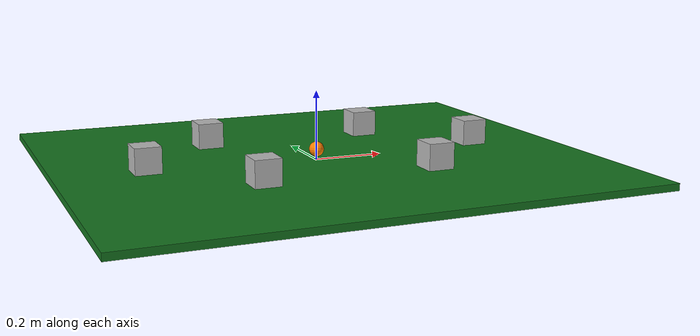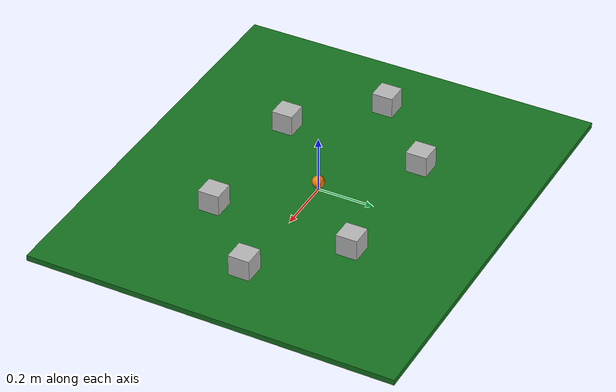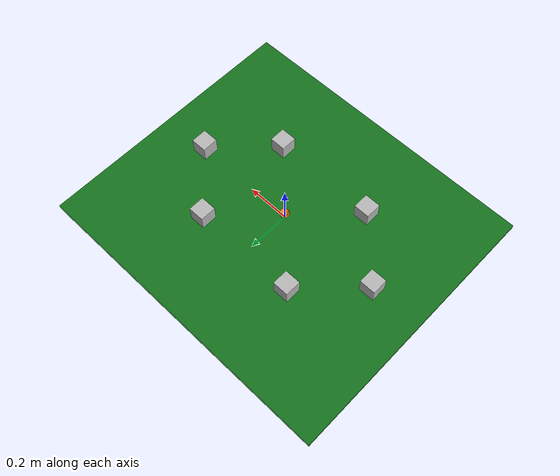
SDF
<?xml version="1.0" ?>
<sdf version="1.12">
  <world name="vsss">
    <physics name="fixed" type="ignored">
      <max_step_size>0.005</max_step_size>
      <real_time_factor>0</real_time_factor>
    </physics>
    <plugin filename="gz-sim-physics-system" name="gz::sim::systems::Physics"/>
    <plugin filename="gz-sim-user-commands-system" name="gz::sim::systems::UserCommands"/>
    <plugin filename="gz-sim-scene-broadcaster-system" name="gz::sim::systems::SceneBroadcaster"/>
    <plugin filename="gz-sim-sensors-system" name="gz::sim::systems::Sensors">
      <render_engine>ogre2</render_engine>
    </plugin>
    <light type="directional" name="sun">
      <pose>0 0 3 0 0 0</pose>
      <diffuse>0.8 0.8 0.8 1</diffuse>
      <direction>0 0 -1</direction>
    </light>
    <model name="field">
      <static>true</static>
      <link name="surface">
        <collision name="collision"><geometry><box><size>1.5 1.3 0.02</size></box></geometry></collision>
        <visual name="visual"><geometry><box><size>1.5 1.3 0.02</size></box></geometry>
          <material><diffuse>0.08 0.45 0.12 1</diffuse></material></visual>
      </link>
    </model>
    <model name="ball">
      <pose>0 0 0.0315 0 0 0</pose>
      <link name="body">
        <inertial><mass>0.046</mass></inertial>
        <collision name="collision"><geometry><sphere><radius>0.0215</radius></sphere></geometry></collision>
        <visual name="visual"><geometry><sphere><radius>0.0215</radius></sphere></geometry>
          <material><diffuse>1 0.5 0 1</diffuse></material></visual>
      </link>
    </model>
    <model name="top_camera">
      <static>true</static><pose>0 0 2.0 0 1.570796 0</pose>
      <link name="camera_link"><sensor name="camera" type="camera">
        <topic>/vsss/camera/image_raw</topic>
        <camera>
          <camera_info_topic>/vsss/camera/camera_info</camera_info_topic>
          <horizontal_fov>1.0</horizontal_fov>
          <image><width>680</width><height>520</height><format>R8G8B8</format></image>
        </camera>
        <always_on>true</always_on><update_rate>30</update_rate>
      </sensor></link>
    </model>
    <include><uri>model://vsss_robot</uri><name>blue_0</name><pose>-0.5 0 0.0475 0 0 0</pose></include>
    <include><uri>model://vsss_robot</uri><name>blue_1</name><pose>-0.25 0.25 0.0475 0 0 0</pose></include>
    <include><uri>model://vsss_robot</uri><name>blue_2</name><pose>-0.25 -0.25 0.0475 0 0 0</pose></include>
    <include><uri>model://vsss_robot</uri><name>yellow_0</name><pose>0.5 0 0.0475 0 0 3.141593</pose></include>
    <include><uri>model://vsss_robot</uri><name>yellow_1</name><pose>0.25 0.25 0.0475 0 0 3.141593</pose></include>
    <include><uri>model://vsss_robot</uri><name>yellow_2</name><pose>0.25 -0.25 0.0475 0 0 3.141593</pose></include>
  </world>
</sdf>

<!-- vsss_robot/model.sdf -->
<sdf version="1.12">
  <model name="vsss_robot">
    <link name="base">
      <inertial><mass>0.5</mass></inertial>
      <collision name="collision"><geometry><box><size>0.075 0.075 0.075</size></box></geometry></collision>
      <visual name="visual"><geometry><box><size>0.075 0.075 0.075</size></box></geometry></visual>
    </link>
    <link name="left_wheel"><pose relative_to="base">0 0.03 -0.025 1.570796 0 0</pose>
      <collision name="collision"><geometry><cylinder><radius>0.025</radius><length>0.01</length></cylinder></geometry></collision>
      <visual name="visual"><geometry><cylinder><radius>0.025</radius><length>0.01</length></cylinder></geometry></visual>
    </link>
    <link name="right_wheel"><pose relative_to="base">0 -0.03 -0.025 1.570796 0 0</pose>
      <collision name="collision"><geometry><cylinder><radius>0.025</radius><length>0.01</length></cylinder></geometry></collision>
      <visual name="visual"><geometry><cylinder><radius>0.025</radius><length>0.01</length></cylinder></geometry></visual>
    </link>
    <joint name="left_wheel_joint" type="revolute"><parent>base</parent><child>left_wheel</child><axis><xyz>0 1 0</xyz></axis></joint>
    <joint name="right_wheel_joint" type="revolute"><parent>base</parent><child>right_wheel</child><axis><xyz>0 1 0</xyz></axis></joint>
    <plugin filename="gz-sim-diff-drive-system" name="gz::sim::systems::DiffDrive">
      <left_joint>left_wheel_joint</left_joint><right_joint>right_wheel_joint</right_joint>
      <wheel_separation>0.06</wheel_separation><wheel_radius>0.025</wheel_radius>
    </plugin>
  </model>
</sdf>
